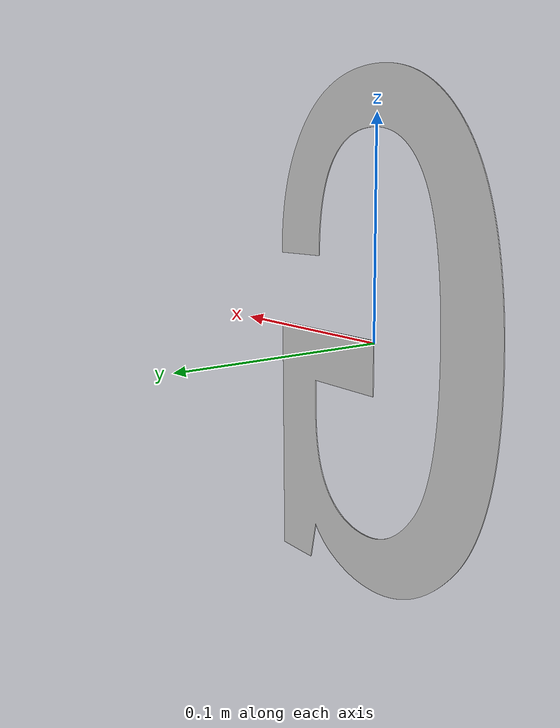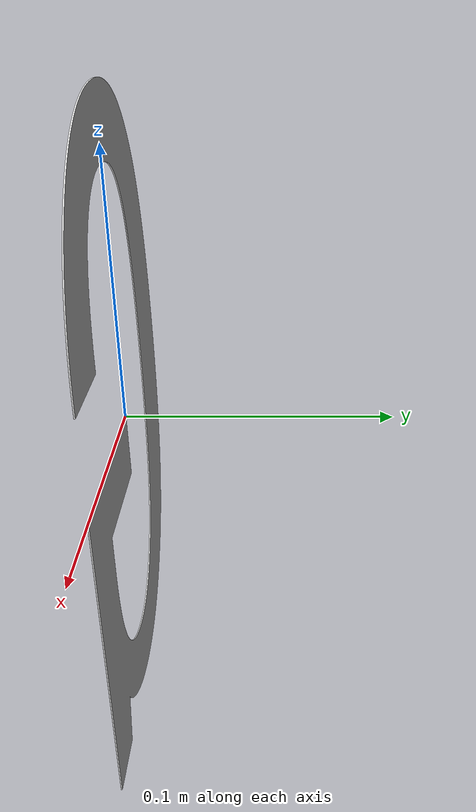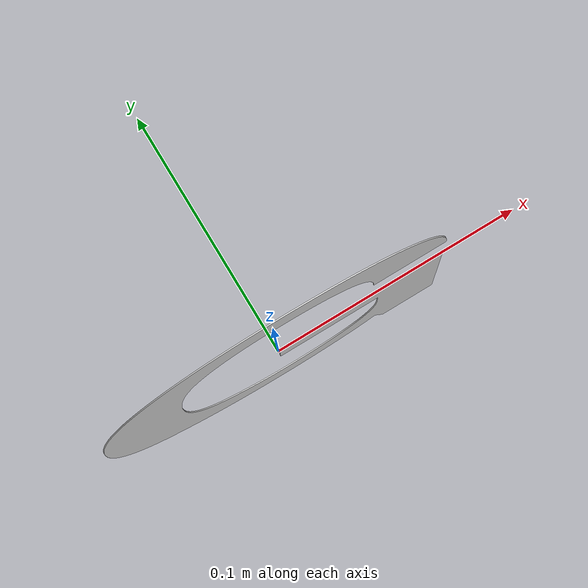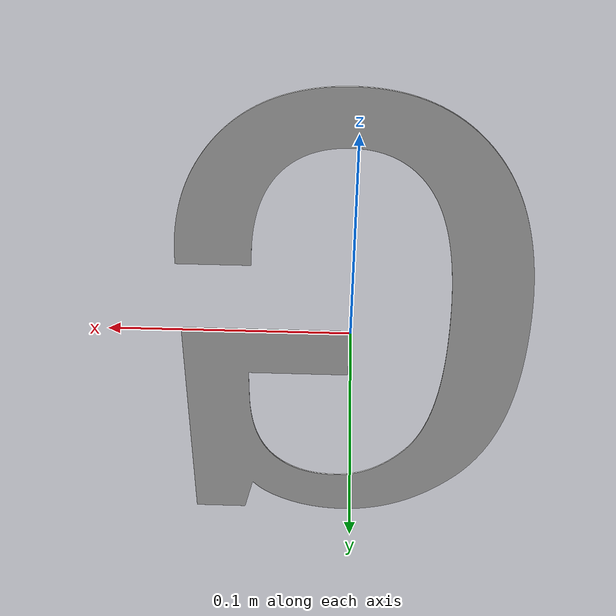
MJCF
<mujoco model="scene_G_edit">
  <compiler angle="degree" meshdir="meshes" texturedir="textures"/>
  <option gravity="0 0 -9.81"/>
  <default>
    <joint armature="0.01" damping="0.5"/>
    <default class="visual">
      <geom contype="0" conaffinity="0" group="2"/>
    </default>
    <default class="collision">
      <geom rgba="0.9 0.9 0.0 0.2" group="3"/>
    </default>
  </default>
  <asset>
    <material name="M_mat0_007" rgba="0.8471 0.8471 0.8471 1.0000"/>
    <mesh name="ImagetostlMesh0006" file="ImagetostlMesh0006.obj" inertia="shell"/>
  </asset>
  <worldbody>
    <body name="imagetostl_mesh_0_006" pos="0.000000 -0.000000 -0.000000" quat="-0.000000 1.000000 0.000000 0.000000">
      <geom type="mesh" mesh="ImagetostlMesh0006" class="visual" material="M_mat0_007"/>
      <geom name="imagetostl_mesh_0006_aabb" type="box" pos="-0.0017 0.0000 -0.0005" size="0.0716 0.0050 0.1193" class="collision"/>
    </body>
  </worldbody>
</mujoco>
